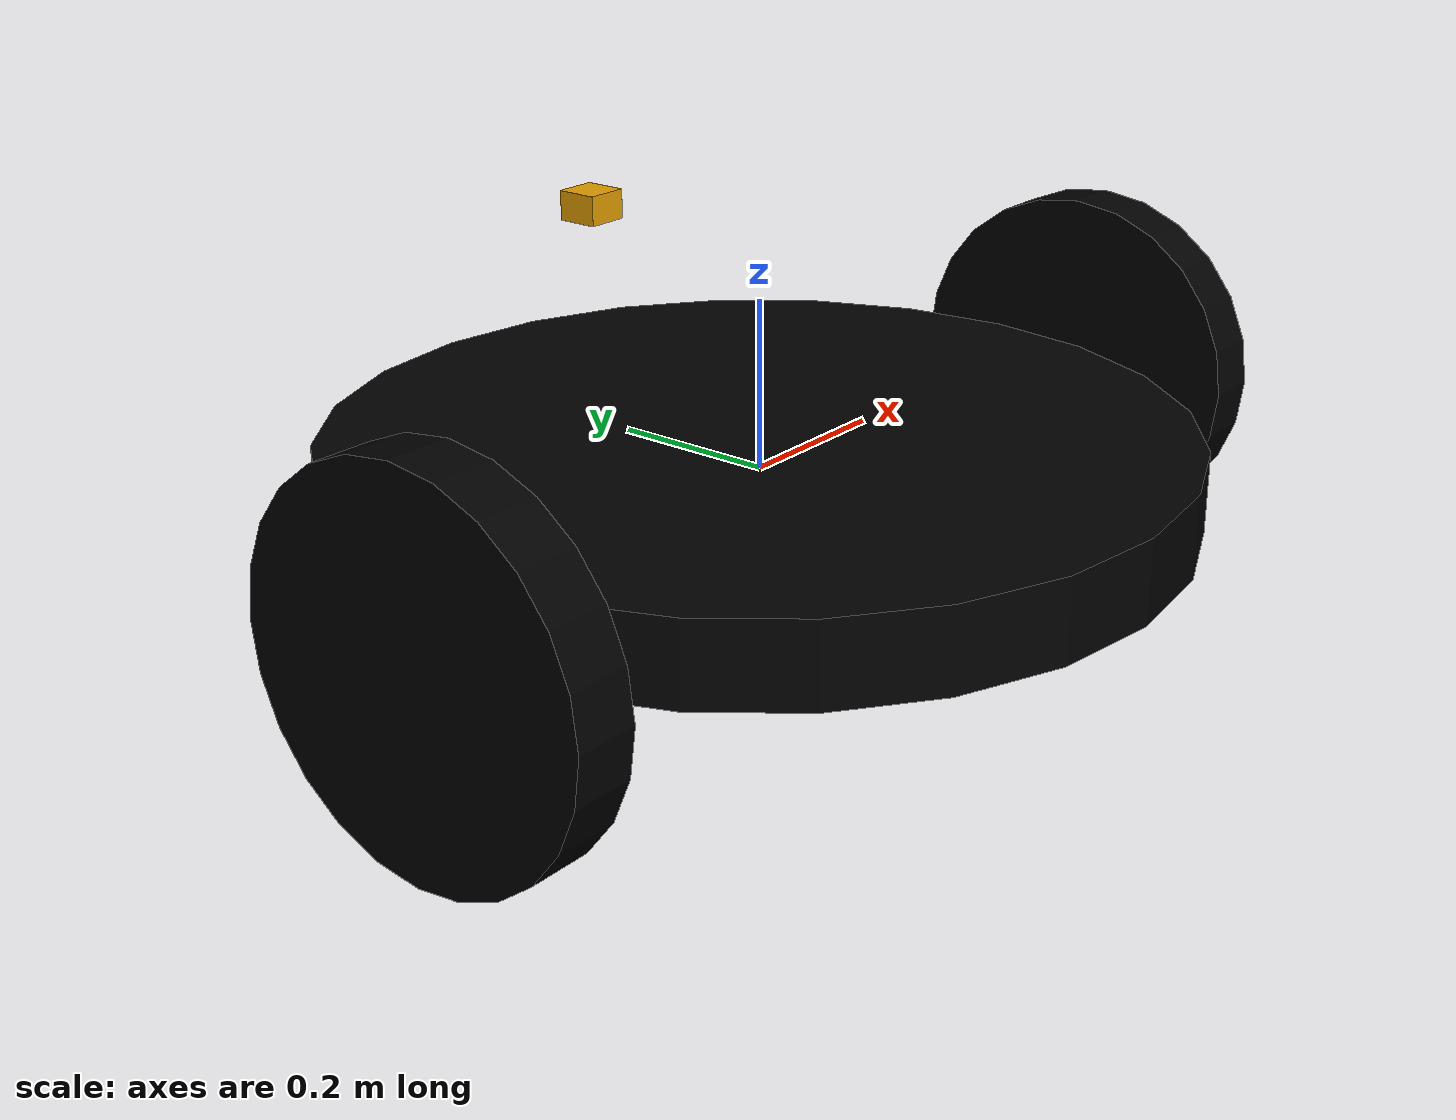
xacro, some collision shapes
<?xml version="1.0"?>
<robot xmlns:xacro="http://www.ros.org/wiki/xacro" name="robot_draft">

  <xacro:include filename="lidar_2d.xacro" />

  <material name="black">
        <color rgba="0 0 0 1" />
    </material>

  <link name="caster_wheel">
    <inertial>
      <mass value="2"/>
      <inertia ixx="0.00197836" ixy="0" ixz="0" iyy="0.00197836" iyz="0" izz="0.00361478"/>
      <origin xyz="0 0 0" rpy="0 -0 0"/>
    </inertial>
    <visual name="visual">
      <origin xyz="0 0 0" rpy="0 -0 0"/>
      <geometry>
        <cylinder radius="0.0601226" length="0.0320289"/>
      </geometry>
      <material name="black"/>

    </visual>
    <collision name="collision">
      <origin xyz="0 0 0" rpy="0 -0 0"/>
      <geometry>
        <cylinder radius="0.060123" length="0.032029"/>
      </geometry>
    </collision>
  </link>
  <link name="chassis">
    <inertial>
      <mass value="20"/>
      <inertia ixx="1.26558" ixy="0" ixz="0" iyy="1.26558" iyz="0" izz="2.5"/>
      <origin xyz="0 0 0" rpy="0 -0 0"/>
    </inertial>
    <visual name="visual">
      <origin xyz="0 0 0" rpy="0 -0 0"/>
      <geometry>
        <cylinder radius="0.5" length="0.0966706"/>
      </geometry>
      <material name="black"/>
    </visual>
    <collision name="collision">
      <origin xyz="0 0 0" rpy="0 -0 0"/>
      <geometry>
        <cylinder radius="0.5" length="0.096671"/>
      </geometry>
    </collision>
  </link>
  <link name="left_wheel">
    <inertial>
      <mass value="1.5"/>
      <inertia ixx="0.0181364" ixy="0" ixz="0" iyy="0.0181364" iyz="0" izz="0.0349969"/>
      <origin xyz="0 0 0" rpy="0 -0 0"/>
    </inertial>
    <visual name="visual">
      <origin xyz="0 0 0" rpy="0 -0 0"/>
      <geometry>
        <cylinder radius="0.216015" length="0.071441"/>
      </geometry>
      <material name="black"/>
    </visual>
    <collision name="collision">
      <origin xyz="0 0 0" rpy="0 -0 0"/>
      <geometry>
        <cylinder radius="0.216015" length="0.071441"/>
      </geometry>
    </collision>
  </link>
  <link name="right_wheel">
    <inertial>
      <mass value="1.5"/>
      <inertia ixx="0.0181364" ixy="0" ixz="0" iyy="0.0181364" iyz="0" izz="0.0349969"/>
      <origin xyz="0 0 0" rpy="0 -0 0"/>
    </inertial>
    <visual name="visual">
      <origin xyz="0 0 0" rpy="0 -0 0"/>
      <geometry>
        <cylinder radius="0.216015" length="0.071441"/>
      </geometry>
      <material name="black"/>
    </visual>
    <collision name="collision">
      <origin xyz="0 0 0" rpy="0 -0 0"/>
      <geometry>
        <cylinder radius="0.216015" length="0.071441"/>
      </geometry>
    </collision>
  </link>

  <joint name="caster_wheel_joint" type="continuous">
    <parent link="chassis"/>
    <child link="caster_wheel"/>
    <origin xyz="0 0.474958 -0.113119" rpy="-3.13946 1.57079 -3.13946"/>
    <axis xyz="0 0 -1"/>
    <dynamics damping="0.0" friction="0.0"/>
  </joint>

  <joint name="left_wheel_joint" type="continuous">
    <parent link="chassis"/>
    <child link="left_wheel"/>
    <origin xyz="-0.58 -0.08 0" rpy="-3.13946 1.57079 -3.13946"/>
    <axis xyz="0 0 -1"/>
    <dynamics damping="0.0" friction="0.0"/>
  </joint>

  <joint name="right_wheel_joint" type="continuous">
    <parent link="chassis"/>
    <child link="right_wheel"/>
    <origin xyz="0.58 -0.08 0" rpy="0 1.57079 0"/>
    <axis xyz="0 0 -1"/>
    <dynamics damping="0.0" friction="0.0"/>
  </joint>

  <joint name="laser_joint" type="fixed">
    <parent link="chassis"/>
    <child link="laser_frame"/>
    <origin xyz="0 0.25 0.25" rpy="0 0 1.570796"/>
  </joint>

  <gazebo>
    <plugin name='wheel_velocity_setter' filename='libwheel_velocity_setter.so'/>
  </gazebo>

  <gazebo>
    <plugin name='diff_drive_wheel_encoder' filename='libdiff_drive_wheel_encoder.so'/>
  </gazebo>

</robot>

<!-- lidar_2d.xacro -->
<robot name="lidar_2d" xmlns:xacro="http://www.ros.org/wiki/xacro">

    <link name="laser_frame">

      <pose>0 0 0 0 -0 1.57588</pose>
      <inertial>
        <origin xyz="0 0 0.035003" rpy="0 -0 0"/>
        <mass value="0.130033"/>
        <inertia ixx="2.628e-05" ixy="0" ixz="0" iyy="2.628e-05" iyz="0" izz="2.601e-05"/>
      </inertial>

      <visual name="visual">
        <origin xyz="0 0 0" rpy="0 -0 1.5707"/>
        <geometry>
          <mesh filename="https://fuel.ignitionrobotics.org/1.0/khulqu15/models/lidar 2d v1/1/files/meshes/lidar_2d_v1.dae"/>
        </geometry>
      </visual>

      <collision name="collision_base">
        <origin xyz="0 0 0.017502" rpy="0 -0 0"/>
        <geometry>
          <box size="0.050011 0.050011 0.035003"/>
        </geometry>
      </collision>

      <collision name="collision_top">
        <origin xyz="0 0 0.052505" rpy="0 -0 0"/>
        <geometry>
          <cylinder radius="0.02" length="0.035003"/>
        </geometry>
      </collision>
    </link>

  <gazebo reference="laser_frame">
    <sensor name='laser' type='ray'>
      <pose>0 0 0.052505 0 -0 0</pose>
      <ray>
        <scan>
          <horizontal>
            <samples>540</samples>
            <resolution>1</resolution>
            <min_angle>-2.3562</min_angle>
            <max_angle>2.3562</max_angle>
          </horizontal>
          <vertical>
            <samples>1</samples>
            <min_angle>0</min_angle>
            <max_angle>0</max_angle>
          </vertical>
        </scan>
        <range>
          <min>0.06</min>
          <max>5</max>
          <resolution>0.01</resolution>
        </range>
        <noise>
          <type>gaussian</type>
          <mean>0</mean>
          <stddev>0.001</stddev>
        </noise>
      </ray>
      <plugin name='laser_controller' filename='libgazebo_ros_ray_sensor.so'>
        <ros>
          <argument>--ros-args --remap ~/out:=scan</argument>
        </ros>
        <output_type>sensor_msgs/LaserScan</output_type>
        <frame_name>laser_frame</frame_name>
      </plugin>
      <always_on>0</always_on>
      <update_rate>30</update_rate>
      <visualize>1</visualize>
    </sensor>
  </gazebo>

</robot>
